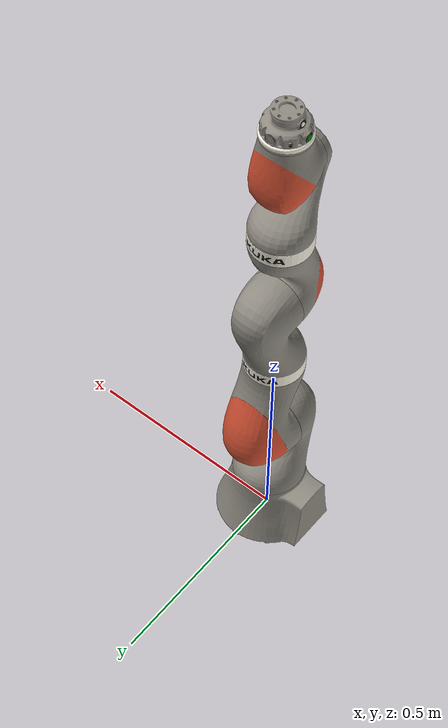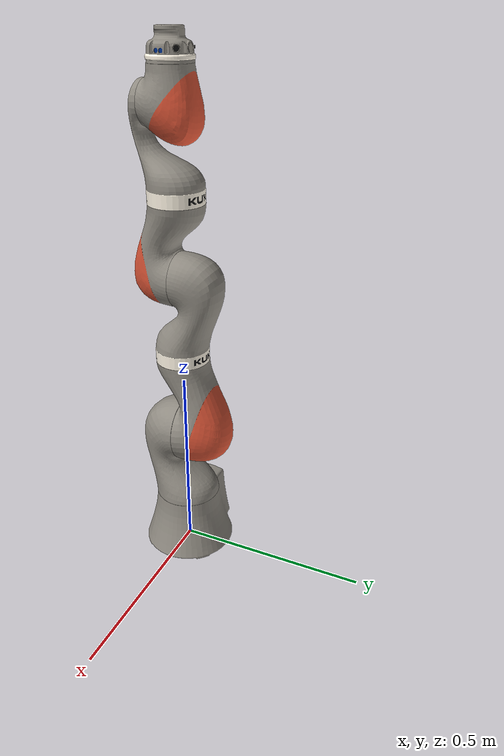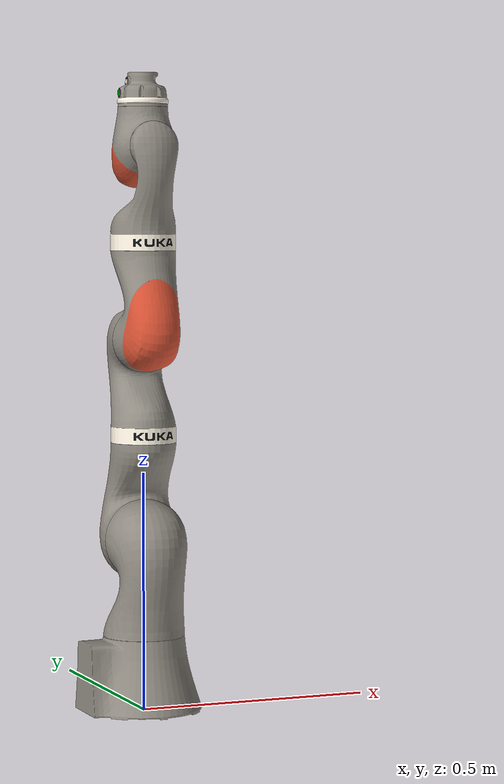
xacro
<?xml version="1.0"?>
<robot xmlns:xacro="http://www.ros.org/wiki/xacro" name="lbr_iiwa14_r820">
  <!-- Import iiwa macro files  -->
  <xacro:include filename="$(find kuka_lbr_iiwa_support)/urdf/lbr_iiwa14_r820_TP_macro.xacro"/>
  <xacro:include filename="$(find kuka_lbr_iiwa_support)/urdf/lbr_iiwa_ros2_control_macro.xacro"/>
  <!-- Read additional arguments  -->
  <xacro:arg name="controller_ip" default="0.0.0.0"/>
  <xacro:arg name="client_ip" default="0.0.0.0"/>
  <xacro:arg name="client_port" default="30200"/>
  <xacro:arg name="mode" default="hardware"/>
  <xacro:arg name="roundtrip_time" default="0"/>
  <xacro:arg name="x" default="0"/>
  <xacro:arg name="y" default="0"/>
  <xacro:arg name="z" default="0"/>
  <xacro:arg name="roll" default="0"/>
  <xacro:arg name="pitch" default="0"/>
  <xacro:arg name="yaw" default="0"/>
  <xacro:arg name="prefix" default=""/>
  <xacro:kuka_lbr_iiwa_ros2_control name="$(arg prefix)lbr_iiwa14_r820" prefix="$(arg prefix)" io_access="false" mode="$(arg mode)" roundtrip_time="$(arg roundtrip_time)" controller_ip="$(arg controller_ip)" client_ip="$(arg client_ip)" client_port="$(arg client_port)"/>
  <xacro:kuka_lbr_iiwa14_r820_robot prefix="$(arg prefix)" package_name="kuka_lbr_iiwa_support">
    <origin xyz="$(arg x) $(arg y) $(arg z)" rpy="$(arg roll) $(arg pitch) $(arg yaw)"/>
  </xacro:kuka_lbr_iiwa14_r820_robot>
</robot>

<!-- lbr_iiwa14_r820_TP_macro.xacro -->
<robot xmlns:xacro="http://wiki.ros.org/xacro" name="lbr_iiwa14_r820">
  <!-- include helper xacros -->
  <xacro:macro name="kuka_lbr_iiwa14_r820_robot" params="prefix package_name *origin">
    <!-- links - main serial chain -->
    <link name="world"/>
    <link name="${prefix}base_link">
      <visual>
        <geometry>
          <mesh filename="package://${package_name}/meshes/lbr_iiwa14_r820/visual/base_link.dae"/>
        </geometry>
        <origin rpy="0.0 0.0 0.0" xyz="0.0 0.0 0.0"/>
      </visual>
      <collision>
        <geometry>
          <mesh filename="package://${package_name}/meshes/lbr_iiwa14_r820/collision/base_link.stl"/>
        </geometry>
        <origin rpy="0.0 0.0 0.0" xyz="0.0 0.0 0.0"/>
      </collision>
      <inertial>
        <inertia ixx="1.0" ixy="0.0" ixz="0.0" iyy="1.0" iyz="0.0" izz="1.0"/>
        <mass value="8.666E0"/>
        <origin rpy="0.0 0.0 0.0" xyz="0.0 0.0 0.0"/>
      </inertial>
    </link>
    <link name="${prefix}link_1">
      <visual>
        <geometry>
          <mesh filename="package://${package_name}/meshes/lbr_iiwa14_r820/visual/link_1.dae"/>
        </geometry>
        <origin rpy="0.0 0.0 0.0" xyz="0.0 0.0 0.0"/>
      </visual>
      <collision>
        <origin rpy="0.0 0.0 0.0" xyz="0.0 0.0 0.0"/>
        <geometry>
          <mesh filename="package://${package_name}/meshes/lbr_iiwa14_r820/collision/link_1.stl"/>
        </geometry>
      </collision>
      <inertial>
        <inertia ixx="0.0489108039022503" ixy="0.0" ixz="0.0" iyy="0.0383705935400879" iyz="0.0" izz="0.0522121642769911"/>
        <mass value="9.62E0"/>
        <origin rpy="-1.3035636348359196 -0.7815781053554747 1.2529437882898196" xyz="0.00344301039501039 0.0191980353430353 0.08662803846153849"/>
      </inertial>
    </link>
    <link name="${prefix}link_2">
      <visual>
        <geometry>
          <mesh filename="package://${package_name}/meshes/lbr_iiwa14_r820/visual/link_2.dae"/>
        </geometry>
        <origin rpy="0.0 0.0 0.0" xyz="0.0 0.0 0.0"/>
      </visual>
      <collision>
        <origin rpy="0.0 0.0 0.0" xyz="0.0 0.0 0.0"/>
        <geometry>
          <mesh filename="package://${package_name}/meshes/lbr_iiwa14_r820/collision/link_2.stl"/>
        </geometry>
      </collision>
      <inertial>
        <inertia ixx="0.0306168627253135" ixy="0.0" ixz="0.0" iyy="0.252047093745431" iyz="0.0" izz="0.258650362609461"/>
        <mass value="8.079E0"/>
        <origin rpy="0.017400716172763755 1.2184236596039677E-4 7.609596915052352E-4" xyz="0.144939171927219 4.90834261666048E-4 0.0453728741180839"/>
      </inertial>
    </link>
    <link name="${prefix}link_3">
      <visual>
        <geometry>
          <mesh filename="package://${package_name}/meshes/lbr_iiwa14_r820/visual/link_3.dae"/>
        </geometry>
        <origin rpy="0.0 0.0 0.0" xyz="0.0 0.0 0.0"/>
      </visual>
      <collision>
        <origin rpy="0.0 0.0 0.0" xyz="0.0 0.0 0.0"/>
        <geometry>
          <mesh filename="package://${package_name}/meshes/lbr_iiwa14_r820/collision/link_3.stl"/>
        </geometry>
      </collision>
      <inertial>
        <inertia ixx="0.0181557035426496" ixy="0.0" ixz="0.0" iyy="0.0346916391676837" iyz="0.0" izz="0.037776951242458"/>
        <mass value="7.6604E0"/>
        <origin rpy="0.1692981167548117 0.5271433699021747 -2.9605806714357508" xyz="0.0400709362435382 0.00400998642368544 0.0499127101717926"/>
      </inertial>
    </link>
    <link name="${prefix}link_4">
      <visual>
        <geometry>
          <mesh filename="package://${package_name}/meshes/lbr_iiwa14_r820/visual/link_4.dae"/>
        </geometry>
        <origin rpy="0.0 0.0 0.0" xyz="0.0 0.0 0.0"/>
      </visual>
      <collision>
        <origin rpy="0.0 0.0 0.0" xyz="0.0 0.0 0.0"/>
        <geometry>
          <mesh filename="package://${package_name}/meshes/lbr_iiwa14_r820/collision/link_4.stl"/>
        </geometry>
      </collision>
      <inertial>
        <inertia ixx="0.0208771593304277" ixy="0.0" ixz="0.0" iyy="0.0526135698207455" iyz="0.0" izz="0.0587485883681802"/>
        <mass value="5.7014E0"/>
        <origin rpy="1.535166999601284 -1.2065715961818437 -1.512863903166617" xyz="0.00141160065948714 0.060839292103693904 -0.12025970463395"/>
      </inertial>
    </link>
    <link name="${prefix}link_5">
      <visual>
        <geometry>
          <mesh filename="package://${package_name}/meshes/lbr_iiwa14_r820/visual/link_5.dae"/>
        </geometry>
        <origin rpy="0.0 0.0 0.0" xyz="0.0 0.0 0.0"/>
      </visual>
      <collision>
        <origin rpy="0.0 0.0 0.0" xyz="0.0 0.0 0.0"/>
        <geometry>
          <mesh filename="package://${package_name}/meshes/lbr_iiwa14_r820/collision/link_5.stl"/>
        </geometry>
      </collision>
      <inertial>
        <inertia ixx="0.0208771593304277" ixy="0.0" ixz="0.0" iyy="0.0526135698207455" iyz="0.0" izz="0.0587485883681802"/>
        <mass value="5.7014E0"/>
        <origin rpy="1.535166999601284 -1.2065715961818437 -1.512863903166617" xyz="0.00141160065948714 0.060839292103693904 -0.12025970463395"/>
      </inertial>
    </link>
    <link name="${prefix}link_6">
      <visual>
        <geometry>
          <mesh filename="package://${package_name}/meshes/lbr_iiwa14_r820/visual/link_6.dae"/>
        </geometry>
        <origin rpy="0.0 0.0 0.0" xyz="0.0 0.0 0.0"/>
      </visual>
      <collision>
        <origin rpy="0.0 0.0 0.0" xyz="0.0 0.0 0.0"/>
        <geometry>
          <mesh filename="package://${package_name}/meshes/lbr_iiwa14_r820/collision/link_6.stl"/>
        </geometry>
      </collision>
      <inertial>
        <inertia ixx="0.00390274036654823" ixy="0.0" ixz="0.0" iyy="0.00286930887521153" iyz="0.0" izz="0.00403512413298348"/>
        <mass value="1.509E0"/>
        <origin rpy="0.051936335875096745 -0.1296523529795729 0.0038347791577379832" xyz="-5.61365142478463E-4 0.00904387011265739 0.0494449237905898"/>
      </inertial>
    </link>
    <link name="${prefix}link_7">
      <visual>
        <geometry>
          <mesh filename="package://${package_name}/meshes/lbr_iiwa14_r820/visual/link_7_TP.dae"/>
        </geometry>
        <origin rpy="0.0 0.0 0.0" xyz="0.0 0.0 0.0"/>
      </visual>
      <collision>
        <origin rpy="0.0 0.0 0.0" xyz="0.0 0.0 0.0"/>
        <geometry>
          <mesh filename="package://${package_name}/meshes/lbr_iiwa14_r820/collision/link_7_TP.stl"/>
        </geometry>
      </collision>
      <inertial>
        <inertia ixx="0.00390274036654823" ixy="0.0" ixz="0.0" iyy="0.00286930887521153" iyz="0.0" izz="0.00403512413298348"/>
        <mass value="1.509E0"/>
        <origin rpy="0.051936335875096745 -0.1296523529795729 0.0038347791577379832" xyz="-5.61365142478463E-4 0.00904387011265739 0.0494449237905898"/>
      </inertial>
    </link>
    <!-- joints - main serial chain -->
    <joint name="${prefix}world-base_link" type="fixed">
      <parent link="world"/>
      <child link="${prefix}base_link"/>
      <xacro:insert_block name="origin"/>
    </joint>
    <joint name="${prefix}joint_1" type="revolute">
      <parent link="${prefix}base_link"/>
      <child link="${prefix}link_1"/>
      <origin rpy="0.0 0.0 0.0" xyz="0.0 0.0 0.1575"/>
      <axis xyz="0.0 0.0 1.0"/>
      <limit effort="398.011277" lower="${radians(-170)}" upper="${radians(170)}" velocity="${radians(85)}"/>
    </joint>
    <joint name="${prefix}joint_2" type="revolute">
      <parent link="${prefix}link_1"/>
      <child link="${prefix}link_2"/>
      <origin rpy="0.0 0.0 0.0" xyz="0.0 0.0 0.2025"/>
      <axis xyz="0.0 1.0 0.0"/>
      <limit effort="286.529873" lower="${radians(-120)}" upper="${radians(120)}" velocity="${radians(85)}"/>
    </joint>
    <joint name="${prefix}joint_3" type="revolute">
      <parent link="${prefix}link_2"/>
      <child link="${prefix}link_3"/>
      <origin rpy="0.0 0.0 0.0" xyz="0.0 0.0 0.2045"/>
      <axis xyz="0.0 0.0 1.0"/>
      <limit effort="286.529873" lower="${radians(-170)}" upper="${radians(170)}" velocity="${radians(100)}"/>
    </joint>
    <joint name="${prefix}joint_4" type="revolute">
      <parent link="${prefix}link_3"/>
      <child link="${prefix}link_4"/>
      <origin rpy="0.0 0.0 0.0" xyz="0.0 0.0 0.2155"/>
      <axis xyz="0.0 -1.0 0.0"/>
      <limit effort="137.666701" lower="${radians(-120)}" upper="${radians(120)}" velocity="${radians(75)}"/>
    </joint>
    <joint name="${prefix}joint_5" type="revolute">
      <parent link="${prefix}link_4"/>
      <child link="${prefix}link_5"/>
      <origin rpy="0.0 0.0 0.0" xyz="0.0 0.0 0.1845"/>
      <axis xyz="0.0 0.0 1.0"/>
      <limit effort="63.574238" lower="${radians(-170)}" upper="${radians(170)}" velocity="${radians(130)}"/>
    </joint>
    <joint name="${prefix}joint_6" type="revolute">
      <parent link="${prefix}link_5"/>
      <child link="${prefix}link_6"/>
      <origin rpy="0.0 0.0 0.0" xyz="0.0 0.0 0.2155"/>
      <axis xyz="0.0 1.0 0.0"/>
      <limit effort="58.580298" lower="${radians(-120)}" upper="${radians(120)}" velocity="${radians(135)}"/>
    </joint>
    <joint name="${prefix}joint_7" type="revolute">
      <parent link="${prefix}link_6"/>
      <child link="${prefix}link_7"/>
      <origin rpy="0.0 0.0 0.0" xyz="0.0 0.0 0.081"/>
      <axis xyz="0.0 0.0 1.0"/>
      <limit effort="15.927568" lower="${radians(-175)}" upper="${radians(175)}" velocity="${radians(135)}"/>
    </joint>
    <!-- ROS-Industrial 'base' frame - equivalent of 'KUKA ROBROOT'-->
    <link name="${prefix}base"/>
    <joint name="${prefix}base_link-base" type="fixed">
      <origin xyz="0 0 0" rpy="0 0 0"/>
      <parent link="${prefix}base_link"/>
      <child link="${prefix}base"/>
    </joint>
    <!-- ROS-Industrial 'flange' frame - attachment point for EEF models -->
    <link name="${prefix}flange"/>
    <joint name="${prefix}link7-flange" type="fixed">
      <parent link="${prefix}link_7"/>
      <child link="${prefix}flange"/>
      <origin rpy="0.0 0.0 0.0" xyz="0.0 0.0 0.071"/>
    </joint>
    <!-- ROS-Industrial 'tool0' frame - all-zeros tool frame -->
    <link name="${prefix}tool0"/>
    <joint name="${prefix}link7-tool0" type="fixed">
      <parent link="${prefix}link_7"/>
      <child link="${prefix}tool0"/>
      <origin rpy="0.0 0.0 0.0" xyz="0.0 0.0 0.071"/>
    </joint>
  </xacro:macro>
</robot>
